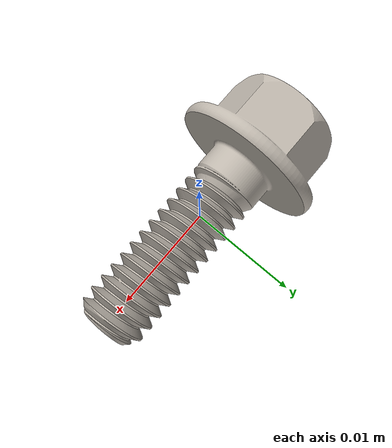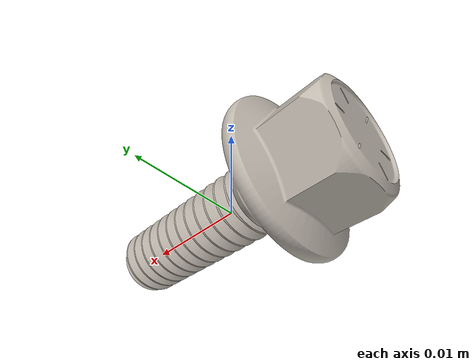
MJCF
<mujoco model="sorting_bolt2">
  <default>
    <default class="bolt_visual">
      <geom group="2" type="mesh" contype="0" conaffinity="0"/>
    </default>
    <default class="bolt_collision">
      <geom group="3" type="mesh"/>
    </default>
  </default>
  <asset>
    <texture type="2d" name="aa79a5d2-e0a3-40cf-85f9-5d41799ee1d6" file="aa79a5d2-e0a3-40cf-85f9-5d41799ee1d6.png"/>
    <material name="material_0" texture="aa79a5d2-e0a3-40cf-85f9-5d41799ee1d6" specular="0.5" shininess="0.5"/>
    <mesh file="sorting_bolt2.obj"/>
    <mesh file="sorting_bolt2_collision_0.obj"/>
    <mesh file="sorting_bolt2_collision_1.obj"/>
    <mesh file="sorting_bolt2_collision_2.obj"/>
    <mesh file="sorting_bolt2_collision_3.obj"/>
    <mesh file="sorting_bolt2_collision_4.obj"/>
    <mesh file="sorting_bolt2_collision_5.obj"/>
    <mesh file="sorting_bolt2_collision_6.obj"/>
    <mesh file="sorting_bolt2_collision_7.obj"/>
    <mesh file="sorting_bolt2_collision_8.obj"/>
    <mesh file="sorting_bolt2_collision_9.obj"/>
    <mesh file="sorting_bolt2_collision_10.obj"/>
    <mesh file="sorting_bolt2_collision_11.obj"/>
    <mesh file="sorting_bolt2_collision_12.obj"/>
    <mesh file="sorting_bolt2_collision_13.obj"/>
    <mesh file="sorting_bolt2_collision_14.obj"/>
    <mesh file="sorting_bolt2_collision_15.obj"/>
    <mesh file="sorting_bolt2_collision_16.obj"/>
  </asset>
  <worldbody>
    <body name="sorting_bolt2">
      <freejoint/>
      <geom material="material_0" mesh="sorting_bolt2" class="bolt_visual"/>
      <geom mesh="sorting_bolt2_collision_0" rgba="0.36839521238576656 0.8459916413150231 0.8047324574583758 1" class="bolt_collision"/>
      <geom mesh="sorting_bolt2_collision_1" rgba="0.9064851886259596 0.3902767973554274 0.28388751052593875 1" class="bolt_collision"/>
      <geom mesh="sorting_bolt2_collision_2" rgba="0.5283134685441861 0.6265127164756876 0.1541609324606239 1" class="bolt_collision"/>
      <geom mesh="sorting_bolt2_collision_3" rgba="0.03588095873689645 0.33178462265092956 0.3923933319814106 1" class="bolt_collision"/>
      <geom mesh="sorting_bolt2_collision_4" rgba="0.8574149130954812 0.4995451860167396 0.2076515975858274 1" class="bolt_collision"/>
      <geom mesh="sorting_bolt2_collision_5" rgba="0.01454460218287179 0.12984058534605925 0.9343377705156688 1" class="bolt_collision"/>
      <geom mesh="sorting_bolt2_collision_6" rgba="0.20939099723404697 0.44953358691416945 0.9066933947292317 1" class="bolt_collision"/>
      <geom mesh="sorting_bolt2_collision_7" rgba="0.4507540509028589 0.09259278174193619 0.38125160579977024 1" class="bolt_collision"/>
      <geom mesh="sorting_bolt2_collision_8" rgba="0.2997856569206325 0.5215433870147255 0.8117748020866123 1" class="bolt_collision"/>
      <geom mesh="sorting_bolt2_collision_9" rgba="0.22733478158137788 0.28688783201594403 0.4630308498875616 1" class="bolt_collision"/>
      <geom mesh="sorting_bolt2_collision_10" rgba="0.22754559940869046 0.34456090566721176 0.24078857737745973 1" class="bolt_collision"/>
      <geom mesh="sorting_bolt2_collision_11" rgba="0.937508289345063 0.2916575100673533 0.9835495249705616 1" class="bolt_collision"/>
      <geom mesh="sorting_bolt2_collision_12" rgba="0.6033634480809428 0.8342959084659394 0.1141743657667057 1" class="bolt_collision"/>
      <geom mesh="sorting_bolt2_collision_13" rgba="0.17260223608327274 0.4538735025321058 0.203098360339518 1" class="bolt_collision"/>
      <geom mesh="sorting_bolt2_collision_14" rgba="0.9584230824003289 0.9680232356401723 0.6168055382240809 1" class="bolt_collision"/>
      <geom mesh="sorting_bolt2_collision_15" rgba="0.829565463312319 0.45145084911235434 0.39073015405311695 1" class="bolt_collision"/>
      <geom mesh="sorting_bolt2_collision_16" rgba="0.7956033428483263 0.38899401854838167 0.16114673226383125 1" class="bolt_collision"/>
    </body>
  </worldbody>
</mujoco>
